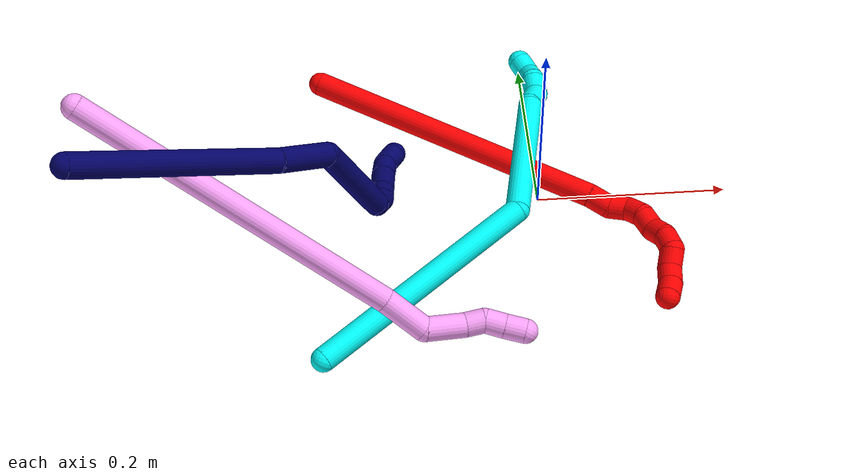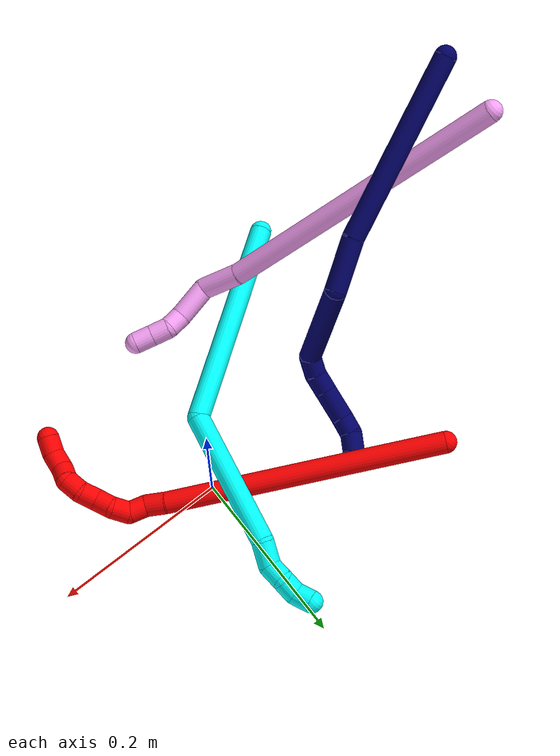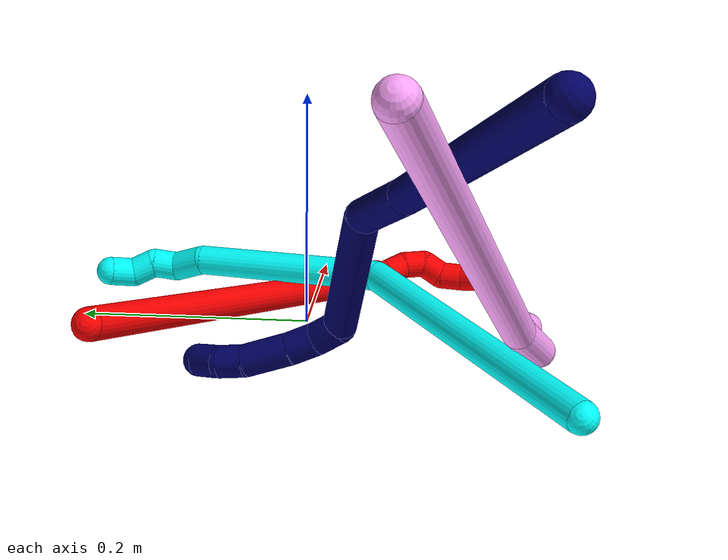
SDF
<sdf version="1.7">
 <world name="default">
  <model name="2">
   <static>0</static>
   <link name="2">
    <collision name="collision-cylinder-e_1_1_4">
     <pose>0.085341 -0.049845 -0.123257 2.7573 0.570647 1.97034</pose>
     <geometry><cylinder><radius>0.0125</radius><length>0.315973</length></cylinder></geometry>
     <surface>
      <friction><ode><mu>1.16</mu><mu2>1.16</mu2><slip1>0</slip1><slip2>0</slip2></ode></friction>
      <contact><ode><kp>1e+06</kp><kd>1</kd><max_vel>0</max_vel><min_depth>0.001</min_depth></ode></contact>
     </surface>
    </collision>
    <visual name="visual-cylinder-e_1_1_4">
     <pose>0.085341 -0.049845 -0.123257 2.7573 0.570647 1.97034</pose>
     <geometry><cylinder><radius>0.0125</radius><length>0.315973</length></cylinder></geometry>
     <material><ambient>1 0 0 1</ambient></material>
    </visual>
    <collision name="collision-cylinder-e_2_4_5">
     <pose>0.176341 -0.104781 -0.255337 2.61828 0.507082 1.53786</pose>
     <geometry><cylinder><radius>0.0125</radius><length>0.023308</length></cylinder></geometry>
     <surface>
      <friction><ode><mu>1.16</mu><mu2>1.16</mu2><slip1>0</slip1><slip2>0</slip2></ode></friction>
      <contact><ode><kp>1e+06</kp><kd>1</kd><max_vel>0</max_vel><min_depth>0.001</min_depth></ode></contact>
     </surface>
    </collision>
    <visual name="visual-cylinder-e_2_4_5">
     <pose>0.176341 -0.104781 -0.255337 2.61828 0.507082 1.53786</pose>
     <geometry><cylinder><radius>0.0125</radius><length>0.023308</length></cylinder></geometry>
     <material><ambient>1 0 0 1</ambient></material>
    </visual>
    <collision name="collision-cylinder-e_3_5_6">
     <pose>0.187873 -0.110285 -0.272355 3.09126 0.621266 2.98509</pose>
     <geometry><cylinder><radius>0.0125</radius><length>0.020178</length></cylinder></geometry>
     <surface>
      <friction><ode><mu>1.16</mu><mu2>1.16</mu2><slip1>0</slip1><slip2>0</slip2></ode></friction>
      <contact><ode><kp>1e+06</kp><kd>1</kd><max_vel>0</max_vel><min_depth>0.001</min_depth></ode></contact>
     </surface>
    </collision>
    <visual name="visual-cylinder-e_3_5_6">
     <pose>0.187873 -0.110285 -0.272355 3.09126 0.621266 2.98509</pose>
     <geometry><cylinder><radius>0.0125</radius><length>0.020178</length></cylinder></geometry>
     <material><ambient>1 0 0 1</ambient></material>
    </visual>
    <collision name="collision-cylinder-e_4_6_7">
     <pose>0.202708 -0.11465 -0.283628 2.23261 1.06103 1.75259</pose>
     <geometry><cylinder><radius>0.0125</radius><length>0.020537</length></cylinder></geometry>
     <surface>
      <friction><ode><mu>1.16</mu><mu2>1.16</mu2><slip1>0</slip1><slip2>0</slip2></ode></friction>
      <contact><ode><kp>1e+06</kp><kd>1</kd><max_vel>0</max_vel><min_depth>0.001</min_depth></ode></contact>
     </surface>
    </collision>
    <visual name="visual-cylinder-e_4_6_7">
     <pose>0.202708 -0.11465 -0.283628 2.23261 1.06103 1.75259</pose>
     <geometry><cylinder><radius>0.0125</radius><length>0.020537</length></cylinder></geometry>
     <material><ambient>1 0 0 1</ambient></material>
    </visual>
    <collision name="collision-cylinder-e_5_7_8">
     <pose>0.217622 -0.126114 -0.28957 1.93494 0.637239 0.892967</pose>
     <geometry><cylinder><radius>0.0125</radius><length>0.020003</length></cylinder></geometry>
     <surface>
      <friction><ode><mu>1.16</mu><mu2>1.16</mu2><slip1>0</slip1><slip2>0</slip2></ode></friction>
      <contact><ode><kp>1e+06</kp><kd>1</kd><max_vel>0</max_vel><min_depth>0.001</min_depth></ode></contact>
     </surface>
    </collision>
    <visual name="visual-cylinder-e_5_7_8">
     <pose>0.217622 -0.126114 -0.28957 1.93494 0.637239 0.892967</pose>
     <geometry><cylinder><radius>0.0125</radius><length>0.020003</length></cylinder></geometry>
     <material><ambient>1 0 0 1</ambient></material>
    </visual>
    <collision name="collision-cylinder-e_6_8_9">
     <pose>0.232478 -0.137938 -0.293884 1.89537 1.09849 1.41099</pose>
     <geometry><cylinder><radius>0.0125</radius><length>0.020001</length></cylinder></geometry>
     <surface>
      <friction><ode><mu>1.16</mu><mu2>1.16</mu2><slip1>0</slip1><slip2>0</slip2></ode></friction>
      <contact><ode><kp>1e+06</kp><kd>1</kd><max_vel>0</max_vel><min_depth>0.001</min_depth></ode></contact>
     </surface>
    </collision>
    <visual name="visual-cylinder-e_6_8_9">
     <pose>0.232478 -0.137938 -0.293884 1.89537 1.09849 1.41099</pose>
     <geometry><cylinder><radius>0.0125</radius><length>0.020001</length></cylinder></geometry>
     <material><ambient>1 0 0 1</ambient></material>
    </visual>
    <collision name="collision-cylinder-e_7_9_10">
     <pose>0.24791 -0.149807 -0.295881 1.64301 0.711077 0.759547</pose>
     <geometry><cylinder><radius>0.0125</radius><length>0.02</length></cylinder></geometry>
     <surface>
      <friction><ode><mu>1.16</mu><mu2>1.16</mu2><slip1>0</slip1><slip2>0</slip2></ode></friction>
      <contact><ode><kp>1e+06</kp><kd>1</kd><max_vel>0</max_vel><min_depth>0.001</min_depth></ode></contact>
     </surface>
    </collision>
    <visual name="visual-cylinder-e_7_9_10">
     <pose>0.24791 -0.149807 -0.295881 1.64301 0.711077 0.759547</pose>
     <geometry><cylinder><radius>0.0125</radius><length>0.02</length></cylinder></geometry>
     <material><ambient>1 0 0 1</ambient></material>
    </visual>
    <collision name="collision-cylinder-e_8_10_11">
     <pose>0.25434 -0.167335 -0.295668 1.49478 -0.009649 -0.008942</pose>
     <geometry><cylinder><radius>0.0125</radius><length>0.02</length></cylinder></geometry>
     <surface>
      <friction><ode><mu>1.16</mu><mu2>1.16</mu2><slip1>0</slip1><slip2>0</slip2></ode></friction>
      <contact><ode><kp>1e+06</kp><kd>1</kd><max_vel>0</max_vel><min_depth>0.001</min_depth></ode></contact>
     </surface>
    </collision>
    <visual name="visual-cylinder-e_8_10_11">
     <pose>0.25434 -0.167335 -0.295668 1.49478 -0.009649 -0.008942</pose>
     <geometry><cylinder><radius>0.0125</radius><length>0.02</length></cylinder></geometry>
     <material><ambient>1 0 0 1</ambient></material>
    </visual>
    <collision name="collision-cylinder-e_9_11_12">
     <pose>0.258769 -0.186005 -0.292952 1.34957 0.469681 0.378266</pose>
     <geometry><cylinder><radius>0.0125</radius><length>0.02</length></cylinder></geometry>
     <surface>
      <friction><ode><mu>1.16</mu><mu2>1.16</mu2><slip1>0</slip1><slip2>0</slip2></ode></friction>
      <contact><ode><kp>1e+06</kp><kd>1</kd><max_vel>0</max_vel><min_depth>0.001</min_depth></ode></contact>
     </surface>
    </collision>
    <visual name="visual-cylinder-e_9_11_12">
     <pose>0.258769 -0.186005 -0.292952 1.34957 0.469681 0.378266</pose>
     <geometry><cylinder><radius>0.0125</radius><length>0.02</length></cylinder></geometry>
     <material><ambient>1 0 0 1</ambient></material>
    </visual>
    <collision name="collision-cylinder-e_10_12_2">
     <pose>0.267813 -0.202467 -0.286598 1.05529 0.46873 0.276494</pose>
     <geometry><cylinder><radius>0.0125</radius><length>0.02</length></cylinder></geometry>
     <surface>
      <friction><ode><mu>1.16</mu><mu2>1.16</mu2><slip1>0</slip1><slip2>0</slip2></ode></friction>
      <contact><ode><kp>1e+06</kp><kd>1</kd><max_vel>0</max_vel><min_depth>0.001</min_depth></ode></contact>
     </surface>
    </collision>
    <visual name="visual-cylinder-e_10_12_2">
     <pose>0.267813 -0.202467 -0.286598 1.05529 0.46873 0.276494</pose>
     <geometry><cylinder><radius>0.0125</radius><length>0.02</length></cylinder></geometry>
     <material><ambient>1 0 0 1</ambient></material>
    </visual>
    <collision name="collision-sphere-2">
     <pose>0.272331 -0.210229 -0.282199 0 -0 0</pose>
     <geometry><sphere><radius>0.0125</radius></sphere></geometry>
     <surface>
      <friction><ode><mu>1.16</mu><mu2>1.16</mu2><slip1>0</slip1><slip2>0</slip2></ode></friction>
      <contact><ode><kp>1e+06</kp><kd>1</kd><max_vel>0</max_vel><min_depth>0.001</min_depth></ode></contact>
     </surface>
    </collision>
    <visual name="visual-sphere-2">
     <pose>0.272331 -0.210229 -0.282199 0 -0 0</pose>
     <geometry><sphere><radius>0.0125</radius></sphere></geometry>
     <material><ambient>1 0 0 1</ambient></material>
    </visual>
    <collision name="collision-sphere-12">
     <pose>0.263295 -0.194705 -0.290996 0 -0 0</pose>
     <geometry><sphere><radius>0.0125</radius></sphere></geometry>
     <surface>
      <friction><ode><mu>1.16</mu><mu2>1.16</mu2><slip1>0</slip1><slip2>0</slip2></ode></friction>
      <contact><ode><kp>1e+06</kp><kd>1</kd><max_vel>0</max_vel><min_depth>0.001</min_depth></ode></contact>
     </surface>
    </collision>
    <visual name="visual-sphere-12">
     <pose>0.263295 -0.194705 -0.290996 0 -0 0</pose>
     <geometry><sphere><radius>0.0125</radius></sphere></geometry>
     <material><ambient>1 0 0 1</ambient></material>
    </visual>
    <collision name="collision-sphere-11">
     <pose>0.254243 -0.177306 -0.294909 0 -0 0</pose>
     <geometry><sphere><radius>0.0125</radius></sphere></geometry>
     <surface>
      <friction><ode><mu>1.16</mu><mu2>1.16</mu2><slip1>0</slip1><slip2>0</slip2></ode></friction>
      <contact><ode><kp>1e+06</kp><kd>1</kd><max_vel>0</max_vel><min_depth>0.001</min_depth></ode></contact>
     </surface>
    </collision>
    <visual name="visual-sphere-11">
     <pose>0.254243 -0.177306 -0.294909 0 -0 0</pose>
     <geometry><sphere><radius>0.0125</radius></sphere></geometry>
     <material><ambient>1 0 0 1</ambient></material>
    </visual>
    <collision name="collision-sphere-10">
     <pose>0.254436 -0.157364 -0.296428 0 -0 0</pose>
     <geometry><sphere><radius>0.0125</radius></sphere></geometry>
     <surface>
      <friction><ode><mu>1.16</mu><mu2>1.16</mu2><slip1>0</slip1><slip2>0</slip2></ode></friction>
      <contact><ode><kp>1e+06</kp><kd>1</kd><max_vel>0</max_vel><min_depth>0.001</min_depth></ode></contact>
     </surface>
    </collision>
    <visual name="visual-sphere-10">
     <pose>0.254436 -0.157364 -0.296428 0 -0 0</pose>
     <geometry><sphere><radius>0.0125</radius></sphere></geometry>
     <material><ambient>1 0 0 1</ambient></material>
    </visual>
    <collision name="collision-sphere-9">
     <pose>0.241383 -0.14225 -0.295334 0 -0 0</pose>
     <geometry><sphere><radius>0.0125</radius></sphere></geometry>
     <surface>
      <friction><ode><mu>1.16</mu><mu2>1.16</mu2><slip1>0</slip1><slip2>0</slip2></ode></friction>
      <contact><ode><kp>1e+06</kp><kd>1</kd><max_vel>0</max_vel><min_depth>0.001</min_depth></ode></contact>
     </surface>
    </collision>
    <visual name="visual-sphere-9">
     <pose>0.241383 -0.14225 -0.295334 0 -0 0</pose>
     <geometry><sphere><radius>0.0125</radius></sphere></geometry>
     <material><ambient>1 0 0 1</ambient></material>
    </visual>
    <collision name="collision-sphere-4">
     <pose>0.170681 -0.09969 -0.246513 0 -0 0</pose>
     <geometry><sphere><radius>0.0125</radius></sphere></geometry>
     <surface>
      <friction><ode><mu>1.16</mu><mu2>1.16</mu2><slip1>0</slip1><slip2>0</slip2></ode></friction>
      <contact><ode><kp>1e+06</kp><kd>1</kd><max_vel>0</max_vel><min_depth>0.001</min_depth></ode></contact>
     </surface>
    </collision>
    <visual name="visual-sphere-4">
     <pose>0.170681 -0.09969 -0.246513 0 -0 0</pose>
     <geometry><sphere><radius>0.0125</radius></sphere></geometry>
     <material><ambient>1 0 0 1</ambient></material>
    </visual>
    <collision name="collision-sphere-1">
     <geometry><sphere><radius>0.0125</radius></sphere></geometry>
     <surface>
      <friction><ode><mu>1.16</mu><mu2>1.16</mu2><slip1>0</slip1><slip2>0</slip2></ode></friction>
      <contact><ode><kp>1e+06</kp><kd>1</kd><max_vel>0</max_vel><min_depth>0.001</min_depth></ode></contact>
     </surface>
    </collision>
    <visual name="visual-sphere-1">
     <geometry><sphere><radius>0.0125</radius></sphere></geometry>
     <material><ambient>1 0 0 1</ambient></material>
    </visual>
    <collision name="collision-sphere-8">
     <pose>0.223572 -0.133626 -0.292433 0 -0 0</pose>
     <geometry><sphere><radius>0.0125</radius></sphere></geometry>
     <surface>
      <friction><ode><mu>1.16</mu><mu2>1.16</mu2><slip1>0</slip1><slip2>0</slip2></ode></friction>
      <contact><ode><kp>1e+06</kp><kd>1</kd><max_vel>0</max_vel><min_depth>0.001</min_depth></ode></contact>
     </surface>
    </collision>
    <visual name="visual-sphere-8">
     <pose>0.223572 -0.133626 -0.292433 0 -0 0</pose>
     <geometry><sphere><radius>0.0125</radius></sphere></geometry>
     <material><ambient>1 0 0 1</ambient></material>
    </visual>
    <collision name="collision-sphere-5">
     <pose>0.182 -0.109872 -0.264161 0 -0 0</pose>
     <geometry><sphere><radius>0.0125</radius></sphere></geometry>
     <surface>
      <friction><ode><mu>1.16</mu><mu2>1.16</mu2><slip1>0</slip1><slip2>0</slip2></ode></friction>
      <contact><ode><kp>1e+06</kp><kd>1</kd><max_vel>0</max_vel><min_depth>0.001</min_depth></ode></contact>
     </surface>
    </collision>
    <visual name="visual-sphere-5">
     <pose>0.182 -0.109872 -0.264161 0 -0 0</pose>
     <geometry><sphere><radius>0.0125</radius></sphere></geometry>
     <material><ambient>1 0 0 1</ambient></material>
    </visual>
    <collision name="collision-sphere-6">
     <pose>0.193745 -0.110697 -0.280548 0 -0 0</pose>
     <geometry><sphere><radius>0.0125</radius></sphere></geometry>
     <surface>
      <friction><ode><mu>1.16</mu><mu2>1.16</mu2><slip1>0</slip1><slip2>0</slip2></ode></friction>
      <contact><ode><kp>1e+06</kp><kd>1</kd><max_vel>0</max_vel><min_depth>0.001</min_depth></ode></contact>
     </surface>
    </collision>
    <visual name="visual-sphere-6">
     <pose>0.193745 -0.110697 -0.280548 0 -0 0</pose>
     <geometry><sphere><radius>0.0125</radius></sphere></geometry>
     <material><ambient>1 0 0 1</ambient></material>
    </visual>
    <collision name="collision-sphere-7">
     <pose>0.211671 -0.118603 -0.286707 0 -0 0</pose>
     <geometry><sphere><radius>0.0125</radius></sphere></geometry>
     <surface>
      <friction><ode><mu>1.16</mu><mu2>1.16</mu2><slip1>0</slip1><slip2>0</slip2></ode></friction>
      <contact><ode><kp>1e+06</kp><kd>1</kd><max_vel>0</max_vel><min_depth>0.001</min_depth></ode></contact>
     </surface>
    </collision>
    <visual name="visual-sphere-7">
     <pose>0.211671 -0.118603 -0.286707 0 -0 0</pose>
     <geometry><sphere><radius>0.0125</radius></sphere></geometry>
     <material><ambient>1 0 0 1</ambient></material>
    </visual>
    <inertial>
     <pose>0.137218 -0.084331 -0.18262 0 -0 0</pose>
     <mass>0.5</mass>
     <inertia>
      <ixx>0.001214</ixx>
      <ixy>0</ixy>
      <ixz>0</ixz>
      <iyy>0.003489</iyy>
      <iyz>0</iyz>
      <izz>-0.000615</izz>
     </inertia>
    </inertial>
   </link>
   <pose>-0.224389 0.130142 0.061998 0.851389 -0.79288 -0.872554</pose>
  </model>
  <model name="3">
   <static>0</static>
   <link name="3">
    <collision name="collision-cylinder-e_1_1_4">
     <pose>0.062578 0.082993 -0.072812 -2.29094 0.515649 -1.05436</pose>
     <geometry><cylinder><radius>0.0125</radius><length>0.253814</length></cylinder></geometry>
     <surface>
      <friction><ode><mu>1.16</mu><mu2>1.16</mu2><slip1>0</slip1><slip2>0</slip2></ode></friction>
      <contact><ode><kp>1e+06</kp><kd>1</kd><max_vel>0</max_vel><min_depth>0.001</min_depth></ode></contact>
     </surface>
    </collision>
    <visual name="visual-cylinder-e_1_1_4">
     <pose>0.062578 0.082993 -0.072812 -2.29094 0.515649 -1.05436</pose>
     <geometry><cylinder><radius>0.0125</radius><length>0.253814</length></cylinder></geometry>
     <material><ambient>0.003922 1 0.996078 1</ambient></material>
    </visual>
    <collision name="collision-cylinder-e_2_4_5">
     <pose>0.129794 0.243758 -0.151608 -1.64759 0.059395 -0.064138</pose>
     <geometry><cylinder><radius>0.0125</radius><length>0.156279</length></cylinder></geometry>
     <surface>
      <friction><ode><mu>1.16</mu><mu2>1.16</mu2><slip1>0</slip1><slip2>0</slip2></ode></friction>
      <contact><ode><kp>1e+06</kp><kd>1</kd><max_vel>0</max_vel><min_depth>0.001</min_depth></ode></contact>
     </surface>
    </collision>
    <visual name="visual-cylinder-e_2_4_5">
     <pose>0.129794 0.243758 -0.151608 -1.64759 0.059395 -0.064138</pose>
     <geometry><cylinder><radius>0.0125</radius><length>0.156279</length></cylinder></geometry>
     <material><ambient>0.003922 1 0.996078 1</ambient></material>
    </visual>
    <collision name="collision-cylinder-e_3_5_6">
     <pose>0.132255 0.334468 -0.162806 -1.95386 -0.154847 0.228802</pose>
     <geometry><cylinder><radius>0.0125</radius><length>0.028237</length></cylinder></geometry>
     <surface>
      <friction><ode><mu>1.16</mu><mu2>1.16</mu2><slip1>0</slip1><slip2>0</slip2></ode></friction>
      <contact><ode><kp>1e+06</kp><kd>1</kd><max_vel>0</max_vel><min_depth>0.001</min_depth></ode></contact>
     </surface>
    </collision>
    <visual name="visual-cylinder-e_3_5_6">
     <pose>0.132255 0.334468 -0.162806 -1.95386 -0.154847 0.228802</pose>
     <geometry><cylinder><radius>0.0125</radius><length>0.028237</length></cylinder></geometry>
     <material><ambient>0.003922 1 0.996078 1</ambient></material>
    </visual>
    <collision name="collision-cylinder-e_4_6_7">
     <pose>0.130572 0.357536 -0.165899 -1.36443 0.047759 -0.038799</pose>
     <geometry><cylinder><radius>0.0125</radius><length>0.02072</length></cylinder></geometry>
     <surface>
      <friction><ode><mu>1.16</mu><mu2>1.16</mu2><slip1>0</slip1><slip2>0</slip2></ode></friction>
      <contact><ode><kp>1e+06</kp><kd>1</kd><max_vel>0</max_vel><min_depth>0.001</min_depth></ode></contact>
     </surface>
    </collision>
    <visual name="visual-cylinder-e_4_6_7">
     <pose>0.130572 0.357536 -0.165899 -1.36443 0.047759 -0.038799</pose>
     <geometry><cylinder><radius>0.0125</radius><length>0.02072</length></cylinder></geometry>
     <material><ambient>0.003922 1 0.996078 1</ambient></material>
    </visual>
    <collision name="collision-cylinder-e_5_7_8">
     <pose>0.126331 0.376637 -0.163985 -1.59378 -0.485514 0.496349</pose>
     <geometry><cylinder><radius>0.0125</radius><length>0.020294</length></cylinder></geometry>
     <surface>
      <friction><ode><mu>1.16</mu><mu2>1.16</mu2><slip1>0</slip1><slip2>0</slip2></ode></friction>
      <contact><ode><kp>1e+06</kp><kd>1</kd><max_vel>0</max_vel><min_depth>0.001</min_depth></ode></contact>
     </surface>
    </collision>
    <visual name="visual-cylinder-e_5_7_8">
     <pose>0.126331 0.376637 -0.163985 -1.59378 -0.485514 0.496349</pose>
     <geometry><cylinder><radius>0.0125</radius><length>0.020294</length></cylinder></geometry>
     <material><ambient>0.003922 1 0.996078 1</ambient></material>
    </visual>
    <collision name="collision-cylinder-e_6_8_2">
     <pose>0.120471 0.394554 -0.159154 -1.05794 -0.109158 0.063849</pose>
     <geometry><cylinder><radius>0.0125</radius><length>0.020655</length></cylinder></geometry>
     <surface>
      <friction><ode><mu>1.16</mu><mu2>1.16</mu2><slip1>0</slip1><slip2>0</slip2></ode></friction>
      <contact><ode><kp>1e+06</kp><kd>1</kd><max_vel>0</max_vel><min_depth>0.001</min_depth></ode></contact>
     </surface>
    </collision>
    <visual name="visual-cylinder-e_6_8_2">
     <pose>0.120471 0.394554 -0.159154 -1.05794 -0.109158 0.063849</pose>
     <geometry><cylinder><radius>0.0125</radius><length>0.020655</length></cylinder></geometry>
     <material><ambient>0.003922 1 0.996078 1</ambient></material>
    </visual>
    <collision name="collision-sphere-2">
     <pose>0.119346 0.4035 -0.154117 0 -0 0</pose>
     <geometry><sphere><radius>0.0125</radius></sphere></geometry>
     <surface>
      <friction><ode><mu>1.16</mu><mu2>1.16</mu2><slip1>0</slip1><slip2>0</slip2></ode></friction>
      <contact><ode><kp>1e+06</kp><kd>1</kd><max_vel>0</max_vel><min_depth>0.001</min_depth></ode></contact>
     </surface>
    </collision>
    <visual name="visual-sphere-2">
     <pose>0.119346 0.4035 -0.154117 0 -0 0</pose>
     <geometry><sphere><radius>0.0125</radius></sphere></geometry>
     <material><ambient>0.003922 1 0.996078 1</ambient></material>
    </visual>
    <collision name="collision-sphere-4">
     <pose>0.125156 0.165986 -0.145623 0 -0 0</pose>
     <geometry><sphere><radius>0.0125</radius></sphere></geometry>
     <surface>
      <friction><ode><mu>1.16</mu><mu2>1.16</mu2><slip1>0</slip1><slip2>0</slip2></ode></friction>
      <contact><ode><kp>1e+06</kp><kd>1</kd><max_vel>0</max_vel><min_depth>0.001</min_depth></ode></contact>
     </surface>
    </collision>
    <visual name="visual-sphere-4">
     <pose>0.125156 0.165986 -0.145623 0 -0 0</pose>
     <geometry><sphere><radius>0.0125</radius></sphere></geometry>
     <material><ambient>0.003922 1 0.996078 1</ambient></material>
    </visual>
    <collision name="collision-sphere-1">
     <geometry><sphere><radius>0.0125</radius></sphere></geometry>
     <surface>
      <friction><ode><mu>1.16</mu><mu2>1.16</mu2><slip1>0</slip1><slip2>0</slip2></ode></friction>
      <contact><ode><kp>1e+06</kp><kd>1</kd><max_vel>0</max_vel><min_depth>0.001</min_depth></ode></contact>
     </surface>
    </collision>
    <visual name="visual-sphere-1">
     <geometry><sphere><radius>0.0125</radius></sphere></geometry>
     <material><ambient>0.003922 1 0.996078 1</ambient></material>
    </visual>
    <collision name="collision-sphere-8">
     <pose>0.121596 0.385609 -0.164191 0 -0 0</pose>
     <geometry><sphere><radius>0.0125</radius></sphere></geometry>
     <surface>
      <friction><ode><mu>1.16</mu><mu2>1.16</mu2><slip1>0</slip1><slip2>0</slip2></ode></friction>
      <contact><ode><kp>1e+06</kp><kd>1</kd><max_vel>0</max_vel><min_depth>0.001</min_depth></ode></contact>
     </surface>
    </collision>
    <visual name="visual-sphere-8">
     <pose>0.121596 0.385609 -0.164191 0 -0 0</pose>
     <geometry><sphere><radius>0.0125</radius></sphere></geometry>
     <material><ambient>0.003922 1 0.996078 1</ambient></material>
    </visual>
    <collision name="collision-sphere-5">
     <pose>0.134432 0.32153 -0.157592 0 -0 0</pose>
     <geometry><sphere><radius>0.0125</radius></sphere></geometry>
     <surface>
      <friction><ode><mu>1.16</mu><mu2>1.16</mu2><slip1>0</slip1><slip2>0</slip2></ode></friction>
      <contact><ode><kp>1e+06</kp><kd>1</kd><max_vel>0</max_vel><min_depth>0.001</min_depth></ode></contact>
     </surface>
    </collision>
    <visual name="visual-sphere-5">
     <pose>0.134432 0.32153 -0.157592 0 -0 0</pose>
     <geometry><sphere><radius>0.0125</radius></sphere></geometry>
     <material><ambient>0.003922 1 0.996078 1</ambient></material>
    </visual>
    <collision name="collision-sphere-6">
     <pose>0.130077 0.347407 -0.16802 0 -0 0</pose>
     <geometry><sphere><radius>0.0125</radius></sphere></geometry>
     <surface>
      <friction><ode><mu>1.16</mu><mu2>1.16</mu2><slip1>0</slip1><slip2>0</slip2></ode></friction>
      <contact><ode><kp>1e+06</kp><kd>1</kd><max_vel>0</max_vel><min_depth>0.001</min_depth></ode></contact>
     </surface>
    </collision>
    <visual name="visual-sphere-6">
     <pose>0.130077 0.347407 -0.16802 0 -0 0</pose>
     <geometry><sphere><radius>0.0125</radius></sphere></geometry>
     <material><ambient>0.003922 1 0.996078 1</ambient></material>
    </visual>
    <collision name="collision-sphere-7">
     <pose>0.131067 0.367665 -0.163779 0 -0 0</pose>
     <geometry><sphere><radius>0.0125</radius></sphere></geometry>
     <surface>
      <friction><ode><mu>1.16</mu><mu2>1.16</mu2><slip1>0</slip1><slip2>0</slip2></ode></friction>
      <contact><ode><kp>1e+06</kp><kd>1</kd><max_vel>0</max_vel><min_depth>0.001</min_depth></ode></contact>
     </surface>
    </collision>
    <visual name="visual-sphere-7">
     <pose>0.131067 0.367665 -0.163779 0 -0 0</pose>
     <geometry><sphere><radius>0.0125</radius></sphere></geometry>
     <material><ambient>0.003922 1 0.996078 1</ambient></material>
    </visual>
    <inertial>
     <pose>0.095319 0.18361 -0.113647 0 -0 0</pose>
     <mass>0.5</mass>
     <inertia>
      <ixx>-0.000129</ixx>
      <ixy>0</ixy>
      <ixz>0</ixz>
      <iyy>-0.001054</iyy>
      <iyz>0</iyz>
      <izz>-0.001934</izz>
     </inertia>
    </inertial>
   </link>
   <pose>-0.232328 -0.209134 0.011499 -0.007114 -1.07121 -0.089359</pose>
  </model>
  <model name="4">
   <static>0</static>
   <link name="4">
    <collision name="collision-cylinder-e_1_1_4">
     <pose>0.014096 -0.025909 -0.171609 2.99175 0.081043 0.990469</pose>
     <geometry><cylinder><radius>0.0125</radius><length>0.348251</length></cylinder></geometry>
     <surface>
      <friction><ode><mu>1.16</mu><mu2>1.16</mu2><slip1>0</slip1><slip2>0</slip2></ode></friction>
      <contact><ode><kp>1e+06</kp><kd>1</kd><max_vel>0</max_vel><min_depth>0.001</min_depth></ode></contact>
     </surface>
    </collision>
    <visual name="visual-cylinder-e_1_1_4">
     <pose>0.014096 -0.025909 -0.171609 2.99175 0.081043 0.990469</pose>
     <geometry><cylinder><radius>0.0125</radius><length>0.348251</length></cylinder></geometry>
     <material><ambient>1 0.65098 0.996078 1</ambient></material>
    </visual>
    <collision name="collision-cylinder-e_2_4_5">
     <pose>0.031418 -0.058729 -0.366145 2.84879 0.133897 0.853521</pose>
     <geometry><cylinder><radius>0.0125</radius><length>0.048325</length></cylinder></geometry>
     <surface>
      <friction><ode><mu>1.16</mu><mu2>1.16</mu2><slip1>0</slip1><slip2>0</slip2></ode></friction>
      <contact><ode><kp>1e+06</kp><kd>1</kd><max_vel>0</max_vel><min_depth>0.001</min_depth></ode></contact>
     </surface>
    </collision>
    <visual name="visual-cylinder-e_2_4_5">
     <pose>0.031418 -0.058729 -0.366145 2.84879 0.133897 0.853521</pose>
     <geometry><cylinder><radius>0.0125</radius><length>0.048325</length></cylinder></geometry>
     <material><ambient>1 0.65098 0.996078 1</ambient></material>
    </visual>
    <collision name="collision-cylinder-e_3_5_6">
     <pose>0.042417 -0.057811 -0.406737 -2.72436 0.382481 -1.48159</pose>
     <geometry><cylinder><radius>0.0125</radius><length>0.041655</length></cylinder></geometry>
     <surface>
      <friction><ode><mu>1.16</mu><mu2>1.16</mu2><slip1>0</slip1><slip2>0</slip2></ode></friction>
      <contact><ode><kp>1e+06</kp><kd>1</kd><max_vel>0</max_vel><min_depth>0.001</min_depth></ode></contact>
     </surface>
    </collision>
    <visual name="visual-cylinder-e_3_5_6">
     <pose>0.042417 -0.057811 -0.406737 -2.72436 0.382481 -1.48159</pose>
     <geometry><cylinder><radius>0.0125</radius><length>0.041655</length></cylinder></geometry>
     <material><ambient>1 0.65098 0.996078 1</ambient></material>
    </visual>
    <collision name="collision-cylinder-e_4_6_7">
     <pose>0.056178 -0.046218 -0.431606 -2.66027 0.634973 -1.85861</pose>
     <geometry><cylinder><radius>0.0125</radius><length>0.02019</length></cylinder></geometry>
     <surface>
      <friction><ode><mu>1.16</mu><mu2>1.16</mu2><slip1>0</slip1><slip2>0</slip2></ode></friction>
      <contact><ode><kp>1e+06</kp><kd>1</kd><max_vel>0</max_vel><min_depth>0.001</min_depth></ode></contact>
     </surface>
    </collision>
    <visual name="visual-cylinder-e_4_6_7">
     <pose>0.056178 -0.046218 -0.431606 -2.66027 0.634973 -1.85861</pose>
     <geometry><cylinder><radius>0.0125</radius><length>0.02019</length></cylinder></geometry>
     <material><ambient>1 0.65098 0.996078 1</ambient></material>
    </visual>
    <collision name="collision-cylinder-e_5_7_8">
     <pose>0.066993 -0.043199 -0.447853 3.0596 0.488963 2.81566</pose>
     <geometry><cylinder><radius>0.0125</radius><length>0.020555</length></cylinder></geometry>
     <surface>
      <friction><ode><mu>1.16</mu><mu2>1.16</mu2><slip1>0</slip1><slip2>0</slip2></ode></friction>
      <contact><ode><kp>1e+06</kp><kd>1</kd><max_vel>0</max_vel><min_depth>0.001</min_depth></ode></contact>
     </surface>
    </collision>
    <visual name="visual-cylinder-e_5_7_8">
     <pose>0.066993 -0.043199 -0.447853 3.0596 0.488963 2.81566</pose>
     <geometry><cylinder><radius>0.0125</radius><length>0.020555</length></cylinder></geometry>
     <material><ambient>1 0.65098 0.996078 1</ambient></material>
    </visual>
    <collision name="collision-cylinder-e_6_8_2">
     <pose>0.077185 -0.044616 -0.46591 3.06693 0.535553 2.87099</pose>
     <geometry><cylinder><radius>0.0125</radius><length>0.021024</length></cylinder></geometry>
     <surface>
      <friction><ode><mu>1.16</mu><mu2>1.16</mu2><slip1>0</slip1><slip2>0</slip2></ode></friction>
      <contact><ode><kp>1e+06</kp><kd>1</kd><max_vel>0</max_vel><min_depth>0.001</min_depth></ode></contact>
     </surface>
    </collision>
    <visual name="visual-cylinder-e_6_8_2">
     <pose>0.077185 -0.044616 -0.46591 3.06693 0.535553 2.87099</pose>
     <geometry><cylinder><radius>0.0125</radius><length>0.021024</length></cylinder></geometry>
     <material><ambient>1 0.65098 0.996078 1</ambient></material>
    </visual>
    <collision name="collision-sphere-2">
     <pose>0.08255 -0.045291 -0.474926 0 -0 0</pose>
     <geometry><sphere><radius>0.0125</radius></sphere></geometry>
     <surface>
      <friction><ode><mu>1.16</mu><mu2>1.16</mu2><slip1>0</slip1><slip2>0</slip2></ode></friction>
      <contact><ode><kp>1e+06</kp><kd>1</kd><max_vel>0</max_vel><min_depth>0.001</min_depth></ode></contact>
     </surface>
    </collision>
    <visual name="visual-sphere-2">
     <pose>0.08255 -0.045291 -0.474926 0 -0 0</pose>
     <geometry><sphere><radius>0.0125</radius></sphere></geometry>
     <material><ambient>1 0.65098 0.996078 1</ambient></material>
    </visual>
    <collision name="collision-sphere-4">
     <pose>0.028192 -0.051818 -0.343219 0 -0 0</pose>
     <geometry><sphere><radius>0.0125</radius></sphere></geometry>
     <surface>
      <friction><ode><mu>1.16</mu><mu2>1.16</mu2><slip1>0</slip1><slip2>0</slip2></ode></friction>
      <contact><ode><kp>1e+06</kp><kd>1</kd><max_vel>0</max_vel><min_depth>0.001</min_depth></ode></contact>
     </surface>
    </collision>
    <visual name="visual-sphere-4">
     <pose>0.028192 -0.051818 -0.343219 0 -0 0</pose>
     <geometry><sphere><radius>0.0125</radius></sphere></geometry>
     <material><ambient>1 0.65098 0.996078 1</ambient></material>
    </visual>
    <collision name="collision-sphere-1">
     <geometry><sphere><radius>0.0125</radius></sphere></geometry>
     <surface>
      <friction><ode><mu>1.16</mu><mu2>1.16</mu2><slip1>0</slip1><slip2>0</slip2></ode></friction>
      <contact><ode><kp>1e+06</kp><kd>1</kd><max_vel>0</max_vel><min_depth>0.001</min_depth></ode></contact>
     </surface>
    </collision>
    <visual name="visual-sphere-1">
     <geometry><sphere><radius>0.0125</radius></sphere></geometry>
     <material><ambient>1 0.65098 0.996078 1</ambient></material>
    </visual>
    <collision name="collision-sphere-8">
     <pose>0.071821 -0.043942 -0.456895 0 -0 0</pose>
     <geometry><sphere><radius>0.0125</radius></sphere></geometry>
     <surface>
      <friction><ode><mu>1.16</mu><mu2>1.16</mu2><slip1>0</slip1><slip2>0</slip2></ode></friction>
      <contact><ode><kp>1e+06</kp><kd>1</kd><max_vel>0</max_vel><min_depth>0.001</min_depth></ode></contact>
     </surface>
    </collision>
    <visual name="visual-sphere-8">
     <pose>0.071821 -0.043942 -0.456895 0 -0 0</pose>
     <geometry><sphere><radius>0.0125</radius></sphere></geometry>
     <material><ambient>1 0.65098 0.996078 1</ambient></material>
    </visual>
    <collision name="collision-sphere-5">
     <pose>0.034644 -0.065641 -0.389072 0 -0 0</pose>
     <geometry><sphere><radius>0.0125</radius></sphere></geometry>
     <surface>
      <friction><ode><mu>1.16</mu><mu2>1.16</mu2><slip1>0</slip1><slip2>0</slip2></ode></friction>
      <contact><ode><kp>1e+06</kp><kd>1</kd><max_vel>0</max_vel><min_depth>0.001</min_depth></ode></contact>
     </surface>
    </collision>
    <visual name="visual-sphere-5">
     <pose>0.034644 -0.065641 -0.389072 0 -0 0</pose>
     <geometry><sphere><radius>0.0125</radius></sphere></geometry>
     <material><ambient>1 0.65098 0.996078 1</ambient></material>
    </visual>
    <collision name="collision-sphere-6">
     <pose>0.05019 -0.049981 -0.424402 0 -0 0</pose>
     <geometry><sphere><radius>0.0125</radius></sphere></geometry>
     <surface>
      <friction><ode><mu>1.16</mu><mu2>1.16</mu2><slip1>0</slip1><slip2>0</slip2></ode></friction>
      <contact><ode><kp>1e+06</kp><kd>1</kd><max_vel>0</max_vel><min_depth>0.001</min_depth></ode></contact>
     </surface>
    </collision>
    <visual name="visual-sphere-6">
     <pose>0.05019 -0.049981 -0.424402 0 -0 0</pose>
     <geometry><sphere><radius>0.0125</radius></sphere></geometry>
     <material><ambient>1 0.65098 0.996078 1</ambient></material>
    </visual>
    <collision name="collision-sphere-7">
     <pose>0.062166 -0.042456 -0.43881 0 -0 0</pose>
     <geometry><sphere><radius>0.0125</radius></sphere></geometry>
     <surface>
      <friction><ode><mu>1.16</mu><mu2>1.16</mu2><slip1>0</slip1><slip2>0</slip2></ode></friction>
      <contact><ode><kp>1e+06</kp><kd>1</kd><max_vel>0</max_vel><min_depth>0.001</min_depth></ode></contact>
     </surface>
    </collision>
    <visual name="visual-sphere-7">
     <pose>0.062166 -0.042456 -0.43881 0 -0 0</pose>
     <geometry><sphere><radius>0.0125</radius></sphere></geometry>
     <material><ambient>1 0.65098 0.996078 1</ambient></material>
    </visual>
    <inertial>
     <pose>0.024656 -0.034056 -0.24423 0 -0 0</pose>
     <mass>0.5</mass>
     <inertia>
      <ixx>0.004889</ixx>
      <ixy>0</ixy>
      <ixz>0</ixz>
      <iyy>0.00106</iyy>
      <iyz>0</iyz>
      <izz>0.000196</izz>
     </inertia>
    </inertial>
   </link>
   <pose>-0.444471 -0.08816 0.247138 0.256125 -0.881855 -0.419715</pose>
  </model>
  <model name="7">
   <static>0</static>
   <link name="7">
    <collision name="collision-cylinder-e_1_1_4">
     <pose>-0.062426 -0.012076 -0.086776 3.00332 -0.619085 -2.71513</pose>
     <geometry><cylinder><radius>0.0125</radius><length>0.215155</length></cylinder></geometry>
     <surface>
      <friction><ode><mu>1.16</mu><mu2>1.16</mu2><slip1>0</slip1><slip2>0</slip2></ode></friction>
      <contact><ode><kp>1e+06</kp><kd>1</kd><max_vel>0</max_vel><min_depth>0.001</min_depth></ode></contact>
     </surface>
    </collision>
    <visual name="visual-cylinder-e_1_1_4">
     <pose>-0.062426 -0.012076 -0.086776 3.00332 -0.619085 -2.71513</pose>
     <geometry><cylinder><radius>0.0125</radius><length>0.215155</length></cylinder></geometry>
     <material><ambient>0.003922 0 0.403922 1</ambient></material>
    </visual>
    <collision name="collision-cylinder-e_2_4_5">
     <pose>-0.138493 -0.028637 -0.200045 2.9739 -0.469756 -2.46609</pose>
     <geometry><cylinder><radius>0.0125</radius><length>0.060269</length></cylinder></geometry>
     <surface>
      <friction><ode><mu>1.16</mu><mu2>1.16</mu2><slip1>0</slip1><slip2>0</slip2></ode></friction>
      <contact><ode><kp>1e+06</kp><kd>1</kd><max_vel>0</max_vel><min_depth>0.001</min_depth></ode></contact>
     </surface>
    </collision>
    <visual name="visual-cylinder-e_2_4_5">
     <pose>-0.138493 -0.028637 -0.200045 2.9739 -0.469756 -2.46609</pose>
     <geometry><cylinder><radius>0.0125</radius><length>0.060269</length></cylinder></geometry>
     <material><ambient>0.003922 0 0.403922 1</ambient></material>
    </visual>
    <collision name="collision-cylinder-e_3_5_6">
     <pose>-0.168267 -0.0072 -0.268884 -2.59228 -0.314175 1.0242</pose>
     <geometry><cylinder><radius>0.0125</radius><length>0.104411</length></cylinder></geometry>
     <surface>
      <friction><ode><mu>1.16</mu><mu2>1.16</mu2><slip1>0</slip1><slip2>0</slip2></ode></friction>
      <contact><ode><kp>1e+06</kp><kd>1</kd><max_vel>0</max_vel><min_depth>0.001</min_depth></ode></contact>
     </surface>
    </collision>
    <visual name="visual-cylinder-e_3_5_6">
     <pose>-0.168267 -0.0072 -0.268884 -2.59228 -0.314175 1.0242</pose>
     <geometry><cylinder><radius>0.0125</radius><length>0.104411</length></cylinder></geometry>
     <material><ambient>0.003922 0 0.403922 1</ambient></material>
    </visual>
    <collision name="collision-cylinder-e_4_6_7">
     <pose>-0.182736 0.018149 -0.321954 3.08813 0.153712 2.4732</pose>
     <geometry><cylinder><radius>0.0125</radius><length>0.021736</length></cylinder></geometry>
     <surface>
      <friction><ode><mu>1.16</mu><mu2>1.16</mu2><slip1>0</slip1><slip2>0</slip2></ode></friction>
      <contact><ode><kp>1e+06</kp><kd>1</kd><max_vel>0</max_vel><min_depth>0.001</min_depth></ode></contact>
     </surface>
    </collision>
    <visual name="visual-cylinder-e_4_6_7">
     <pose>-0.182736 0.018149 -0.321954 3.08813 0.153712 2.4732</pose>
     <geometry><cylinder><radius>0.0125</radius><length>0.021736</length></cylinder></geometry>
     <material><ambient>0.003922 0 0.403922 1</ambient></material>
    </visual>
    <collision name="collision-cylinder-e_5_7_8">
     <pose>-0.176918 0.015823 -0.342557 2.96601 0.392636 2.3083</pose>
     <geometry><cylinder><radius>0.0125</radius><length>0.021717</length></cylinder></geometry>
     <surface>
      <friction><ode><mu>1.16</mu><mu2>1.16</mu2><slip1>0</slip1><slip2>0</slip2></ode></friction>
      <contact><ode><kp>1e+06</kp><kd>1</kd><max_vel>0</max_vel><min_depth>0.001</min_depth></ode></contact>
     </surface>
    </collision>
    <visual name="visual-cylinder-e_5_7_8">
     <pose>-0.176918 0.015823 -0.342557 2.96601 0.392636 2.3083</pose>
     <geometry><cylinder><radius>0.0125</radius><length>0.021717</length></cylinder></geometry>
     <material><ambient>0.003922 0 0.403922 1</ambient></material>
    </visual>
    <collision name="collision-cylinder-e_6_8_9">
     <pose>-0.165808 0.009486 -0.368606 2.86536 0.392354 1.9209</pose>
     <geometry><cylinder><radius>0.0125</radius><length>0.036381</length></cylinder></geometry>
     <surface>
      <friction><ode><mu>1.16</mu><mu2>1.16</mu2><slip1>0</slip1><slip2>0</slip2></ode></friction>
      <contact><ode><kp>1e+06</kp><kd>1</kd><max_vel>0</max_vel><min_depth>0.001</min_depth></ode></contact>
     </surface>
    </collision>
    <visual name="visual-cylinder-e_6_8_9">
     <pose>-0.165808 0.009486 -0.368606 2.86536 0.392354 1.9209</pose>
     <geometry><cylinder><radius>0.0125</radius><length>0.036381</length></cylinder></geometry>
     <material><ambient>0.003922 0 0.403922 1</ambient></material>
    </visual>
    <collision name="collision-cylinder-e_7_9_10">
     <pose>-0.155564 0.000399 -0.393114 2.64641 0.333992 1.17626</pose>
     <geometry><cylinder><radius>0.0125</radius><length>0.020059</length></cylinder></geometry>
     <surface>
      <friction><ode><mu>1.16</mu><mu2>1.16</mu2><slip1>0</slip1><slip2>0</slip2></ode></friction>
      <contact><ode><kp>1e+06</kp><kd>1</kd><max_vel>0</max_vel><min_depth>0.001</min_depth></ode></contact>
     </surface>
    </collision>
    <visual name="visual-cylinder-e_7_9_10">
     <pose>-0.155564 0.000399 -0.393114 2.64641 0.333992 1.17626</pose>
     <geometry><cylinder><radius>0.0125</radius><length>0.020059</length></cylinder></geometry>
     <material><ambient>0.003922 0 0.403922 1</ambient></material>
    </visual>
    <collision name="collision-cylinder-e_8_10_2">
     <pose>-0.152662 -0.008915 -0.410364 2.64661 -0.038036 -0.15027</pose>
     <geometry><cylinder><radius>0.0125</radius><length>0.020273</length></cylinder></geometry>
     <surface>
      <friction><ode><mu>1.16</mu><mu2>1.16</mu2><slip1>0</slip1><slip2>0</slip2></ode></friction>
      <contact><ode><kp>1e+06</kp><kd>1</kd><max_vel>0</max_vel><min_depth>0.001</min_depth></ode></contact>
     </surface>
    </collision>
    <visual name="visual-cylinder-e_8_10_2">
     <pose>-0.152662 -0.008915 -0.410364 2.64661 -0.038036 -0.15027</pose>
     <geometry><cylinder><radius>0.0125</radius><length>0.020273</length></cylinder></geometry>
     <material><ambient>0.003922 0 0.403922 1</ambient></material>
    </visual>
    <collision name="collision-sphere-2">
     <pose>-0.153047 -0.013726 -0.419277 0 -0 0</pose>
     <geometry><sphere><radius>0.0125</radius></sphere></geometry>
     <surface>
      <friction><ode><mu>1.16</mu><mu2>1.16</mu2><slip1>0</slip1><slip2>0</slip2></ode></friction>
      <contact><ode><kp>1e+06</kp><kd>1</kd><max_vel>0</max_vel><min_depth>0.001</min_depth></ode></contact>
     </surface>
    </collision>
    <visual name="visual-sphere-2">
     <pose>-0.153047 -0.013726 -0.419277 0 -0 0</pose>
     <geometry><sphere><radius>0.0125</radius></sphere></geometry>
     <material><ambient>0.003922 0 0.403922 1</ambient></material>
    </visual>
    <collision name="collision-sphere-10">
     <pose>-0.152277 -0.004103 -0.401451 0 -0 0</pose>
     <geometry><sphere><radius>0.0125</radius></sphere></geometry>
     <surface>
      <friction><ode><mu>1.16</mu><mu2>1.16</mu2><slip1>0</slip1><slip2>0</slip2></ode></friction>
      <contact><ode><kp>1e+06</kp><kd>1</kd><max_vel>0</max_vel><min_depth>0.001</min_depth></ode></contact>
     </surface>
    </collision>
    <visual name="visual-sphere-10">
     <pose>-0.152277 -0.004103 -0.401451 0 -0 0</pose>
     <geometry><sphere><radius>0.0125</radius></sphere></geometry>
     <material><ambient>0.003922 0 0.403922 1</ambient></material>
    </visual>
    <collision name="collision-sphere-9">
     <pose>-0.158852 0.004902 -0.384777 0 -0 0</pose>
     <geometry><sphere><radius>0.0125</radius></sphere></geometry>
     <surface>
      <friction><ode><mu>1.16</mu><mu2>1.16</mu2><slip1>0</slip1><slip2>0</slip2></ode></friction>
      <contact><ode><kp>1e+06</kp><kd>1</kd><max_vel>0</max_vel><min_depth>0.001</min_depth></ode></contact>
     </surface>
    </collision>
    <visual name="visual-sphere-9">
     <pose>-0.158852 0.004902 -0.384777 0 -0 0</pose>
     <geometry><sphere><radius>0.0125</radius></sphere></geometry>
     <material><ambient>0.003922 0 0.403922 1</ambient></material>
    </visual>
    <collision name="collision-sphere-4">
     <pose>-0.124852 -0.024152 -0.173552 0 -0 0</pose>
     <geometry><sphere><radius>0.0125</radius></sphere></geometry>
     <surface>
      <friction><ode><mu>1.16</mu><mu2>1.16</mu2><slip1>0</slip1><slip2>0</slip2></ode></friction>
      <contact><ode><kp>1e+06</kp><kd>1</kd><max_vel>0</max_vel><min_depth>0.001</min_depth></ode></contact>
     </surface>
    </collision>
    <visual name="visual-sphere-4">
     <pose>-0.124852 -0.024152 -0.173552 0 -0 0</pose>
     <geometry><sphere><radius>0.0125</radius></sphere></geometry>
     <material><ambient>0.003922 0 0.403922 1</ambient></material>
    </visual>
    <collision name="collision-sphere-1">
     <geometry><sphere><radius>0.0125</radius></sphere></geometry>
     <surface>
      <friction><ode><mu>1.16</mu><mu2>1.16</mu2><slip1>0</slip1><slip2>0</slip2></ode></friction>
      <contact><ode><kp>1e+06</kp><kd>1</kd><max_vel>0</max_vel><min_depth>0.001</min_depth></ode></contact>
     </surface>
    </collision>
    <visual name="visual-sphere-1">
     <geometry><sphere><radius>0.0125</radius></sphere></geometry>
     <material><ambient>0.003922 0 0.403922 1</ambient></material>
    </visual>
    <collision name="collision-sphere-8">
     <pose>-0.172763 0.01407 -0.352435 0 -0 0</pose>
     <geometry><sphere><radius>0.0125</radius></sphere></geometry>
     <surface>
      <friction><ode><mu>1.16</mu><mu2>1.16</mu2><slip1>0</slip1><slip2>0</slip2></ode></friction>
      <contact><ode><kp>1e+06</kp><kd>1</kd><max_vel>0</max_vel><min_depth>0.001</min_depth></ode></contact>
     </surface>
    </collision>
    <visual name="visual-sphere-8">
     <pose>-0.172763 0.01407 -0.352435 0 -0 0</pose>
     <geometry><sphere><radius>0.0125</radius></sphere></geometry>
     <material><ambient>0.003922 0 0.403922 1</ambient></material>
    </visual>
    <collision name="collision-sphere-5">
     <pose>-0.152134 -0.033122 -0.226538 0 -0 0</pose>
     <geometry><sphere><radius>0.0125</radius></sphere></geometry>
     <surface>
      <friction><ode><mu>1.16</mu><mu2>1.16</mu2><slip1>0</slip1><slip2>0</slip2></ode></friction>
      <contact><ode><kp>1e+06</kp><kd>1</kd><max_vel>0</max_vel><min_depth>0.001</min_depth></ode></contact>
     </surface>
    </collision>
    <visual name="visual-sphere-5">
     <pose>-0.152134 -0.033122 -0.226538 0 -0 0</pose>
     <geometry><sphere><radius>0.0125</radius></sphere></geometry>
     <material><ambient>0.003922 0 0.403922 1</ambient></material>
    </visual>
    <collision name="collision-sphere-6">
     <pose>-0.1844 0.018723 -0.31123 0 -0 0</pose>
     <geometry><sphere><radius>0.0125</radius></sphere></geometry>
     <surface>
      <friction><ode><mu>1.16</mu><mu2>1.16</mu2><slip1>0</slip1><slip2>0</slip2></ode></friction>
      <contact><ode><kp>1e+06</kp><kd>1</kd><max_vel>0</max_vel><min_depth>0.001</min_depth></ode></contact>
     </surface>
    </collision>
    <visual name="visual-sphere-6">
     <pose>-0.1844 0.018723 -0.31123 0 -0 0</pose>
     <geometry><sphere><radius>0.0125</radius></sphere></geometry>
     <material><ambient>0.003922 0 0.403922 1</ambient></material>
    </visual>
    <collision name="collision-sphere-7">
     <pose>-0.181072 0.017575 -0.332679 0 -0 0</pose>
     <geometry><sphere><radius>0.0125</radius></sphere></geometry>
     <surface>
      <friction><ode><mu>1.16</mu><mu2>1.16</mu2><slip1>0</slip1><slip2>0</slip2></ode></friction>
      <contact><ode><kp>1e+06</kp><kd>1</kd><max_vel>0</max_vel><min_depth>0.001</min_depth></ode></contact>
     </surface>
    </collision>
    <visual name="visual-sphere-7">
     <pose>-0.181072 0.017575 -0.332679 0 -0 0</pose>
     <geometry><sphere><radius>0.0125</radius></sphere></geometry>
     <material><ambient>0.003922 0 0.403922 1</ambient></material>
    </visual>
    <inertial>
     <pose>-0.118817 -0.008331 -0.205706 0 -0 0</pose>
     <mass>0.5</mass>
     <inertia>
      <ixx>-0.000807</ixx>
      <ixy>0</ixy>
      <ixz>0</ixz>
      <iyy>0.000567</iyy>
      <iyz>0</iyz>
      <izz>0.000541</izz>
     </inertia>
    </inertial>
   </link>
   <pose>-0.447119 -0.166208 0.249813 -0.938766 -0.004415 2.6484</pose>
  </model>
 </world>
</sdf>
